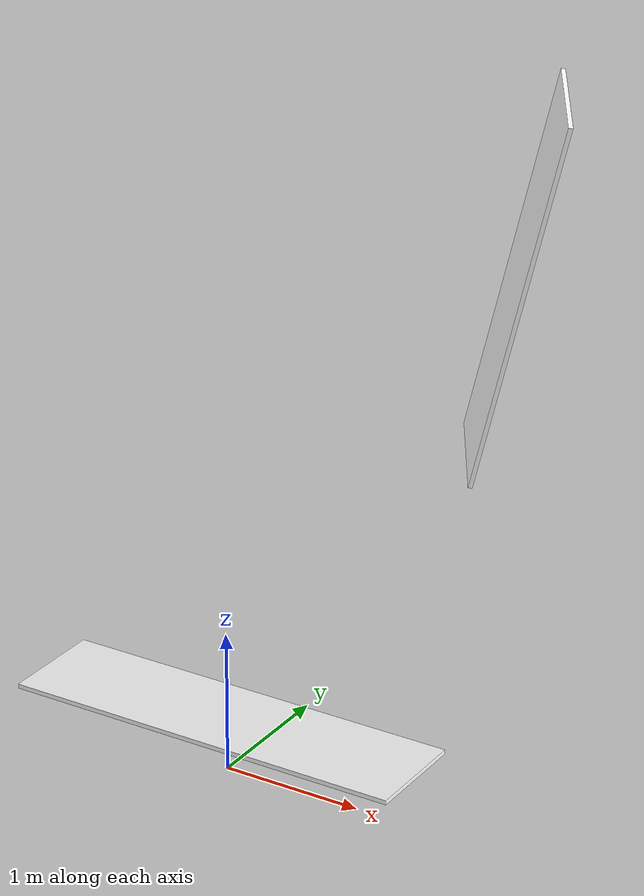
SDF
<?xml version='1.0' ?>

<!--
This is a test SDF specification of two models each containing three links,
two joints, and three sensors.
-->

<sdf version='1.6'>
  <model name='model_1'>
    <pose>0 0 0 0 0 0</pose>

    <link name='link_1'>
      <pose>0 0 0.378326 0 0 0</pose>
      <inertial>
       <pose>0 0 0 0 0 0</pose>
        <mass>57.833</mass>
        <inertia>
          <ixx>2.71553</ixx>
          <ixy>0</ixy>
          <ixz>0</ixz>
          <iyy>68.9</iyy>
          <iyz>0</iyz>
          <izz>71.6063</izz>
        </inertia>
      </inertial>
      <visual name='link_1_visualization'>
        <pose>0 0 0 0 0 0</pose>
        <geometry>
          <box>
            <size>2.8808 0.75 0.030921</size>
          </box>
        </geometry>
        <material>
          <diffuse>1 1 1 1</diffuse>
        </material>
      </visual>
      <sensor name="link_1_laser" type="ray">
        <always_on>1</always_on>
        <visualize>1</visualize>
        <update_rate>20.000000</update_rate>
        <pose>.055 0 0 0 0 0</pose>
        <ray>
          <scan>
            <horizontal>
              <samples>640</samples>
              <resolution>1.000000</resolution>
              <min_angle>-1.570796326794896557998982</min_angle>
              <max_angle>1.570796326794896557998982</max_angle>
            </horizontal>
          </scan>
          <range>
            <min>0.080000</min>
            <max>25.000000</max>
            <resolution>0.010000</resolution>
          </range>
        </ray>
      </sensor>
    </link>

    <joint name='joint_1' type='revolute'>
      <parent>link_1</parent>
      <child>link_2</child>
      <pose>0.17246968 0.08622747 0 0 0 0</pose>
      <axis>
        <xyz>0 0 1</xyz>
        <limit>
          <lower>-0.401426</lower>
          <upper>0.5</upper>
        </limit>
      </axis>
    </joint>

    <link name='link_2'>
      <pose>1 2 3 4 5 6</pose>
      <inertial>
       <pose>0 0 0 0 0 0</pose>
        <mass>105.8</mass>
        <inertia>
          <ixx>2.71553</ixx>
          <ixy>0</ixy>
          <ixz>0</ixz>
          <iyy>68.9</iyy>
          <iyz>0</iyz>
          <izz>71.6063</izz>
        </inertia>
      </inertial>
      <visual name='link_2_visualization'>
        <pose>0 0 0 0 0 0</pose>
        <geometry>
          <box>
            <size>2.8808 0.75 0.030921</size>
          </box>
        </geometry>
        <material>
          <diffuse>1 1 1 1</diffuse>
        </material>
      </visual>
      <sensor name="link_2_laser" type="ray">
        <always_on>1</always_on>
        <visualize>1</visualize>
        <update_rate>20.000000</update_rate>
        <pose>.055 0 0 0 0 0</pose>
        <ray>
          <scan>
            <horizontal>
              <samples>640</samples>
              <resolution>1.000000</resolution>
              <min_angle>-1.570796326794896557998982</min_angle>
              <max_angle>1.570796326794896557998982</max_angle>
            </horizontal>
          </scan>
          <range>
            <min>0.080000</min>
            <max>25.000000</max>
            <resolution>0.010000</resolution>
          </range>
        </ray>
      </sensor>
    </link>

    <joint name='joint_2' type='revolute'>
      <parent>link_2</parent>
      <child>link_3</child>
      <pose>0.17246968 0.08622747 0 0 0 0</pose>
      <axis>
        <xyz>0 0 1</xyz>
        <limit>
          <lower>-0.401426</lower>
          <upper>0.5</upper>
        </limit>
      </axis>
    </joint>

    <link name='link_3'>
      <pose>0 0 0.378326 0 0 0</pose>
      <inertial>
       <pose>0 0 0 0 0 0</pose>
        <mass>57.833</mass>
        <inertia>
          <ixx>2.71553</ixx>
          <ixy>0</ixy>
          <ixz>0</ixz>
          <iyy>68.9</iyy>
          <iyz>0</iyz>
          <izz>71.6063</izz>
        </inertia>
      </inertial>
      <visual name='link_1_visualization'>
        <pose>0 0 0 0 0 0</pose>
        <geometry>
          <box>
            <size>2.8808 0.75 0.030921</size>
          </box>
        </geometry>
        <material>
          <diffuse>1 1 1 1</diffuse>
        </material>
      </visual>
      <sensor name="link_3_laser" type="ray">
        <always_on>1</always_on>
        <visualize>1</visualize>
        <update_rate>20.000000</update_rate>
        <pose>.055 0 0 0 0 0</pose>
        <ray>
          <scan>
            <horizontal>
              <samples>640</samples>
              <resolution>1.000000</resolution>
              <min_angle>-1.570796326794896557998982</min_angle>
              <max_angle>1.570796326794896557998982</max_angle>
            </horizontal>
          </scan>
          <range>
            <min>0.080000</min>
            <max>25.000000</max>
            <resolution>0.010000</resolution>
          </range>
        </ray>
      </sensor>
    </link>
  </model>

  <model name='model_2'>
    <pose>0 0 0 0 0 0</pose>

    <link name='link_1'>
      <pose>0 0 0.378326 0 0 0</pose>
      <inertial>
       <pose>0 0 0 0 0 0</pose>
        <mass>57.833</mass>
        <inertia>
          <ixx>2.71553</ixx>
          <ixy>0</ixy>
          <ixz>0</ixz>
          <iyy>68.9</iyy>
          <iyz>0</iyz>
          <izz>71.6063</izz>
        </inertia>
      </inertial>
      <visual name='link_1_visualization'>
        <pose>0 0 0 0 0 0</pose>
        <geometry>
          <box>
            <size>2.8808 0.75 0.030921</size>
          </box>
        </geometry>
        <material>
          <diffuse>1 1 1 1</diffuse>
        </material>
      </visual>
      <sensor name="link_1_laser" type="ray">
        <always_on>1</always_on>
        <visualize>1</visualize>
        <update_rate>20.000000</update_rate>
        <pose>.055 0 0 0 0 0</pose>
        <ray>
          <scan>
            <horizontal>
              <samples>640</samples>
              <resolution>1.000000</resolution>
              <min_angle>-1.570796326794896557998982</min_angle>
              <max_angle>1.570796326794896557998982</max_angle>
            </horizontal>
          </scan>
          <range>
            <min>0.080000</min>
            <max>25.000000</max>
            <resolution>0.010000</resolution>
          </range>
        </ray>
      </sensor>
    </link>

    <joint name='joint_1' type='revolute'>
      <parent>link_1</parent>
      <child>link_2</child>
      <pose>0.17246968 0.08622747 0 0 0 0</pose>
      <axis>
        <xyz>0 0 1</xyz>
        <limit>
          <lower>-0.401426</lower>
          <upper>0.5</upper>
        </limit>
      </axis>
    </joint>

    <link name='link_2'>
      <pose>1 2 3 4 5 6</pose>
      <inertial>
       <pose>0 0 0 0 0 0</pose>
        <mass>105.8</mass>
        <inertia>
          <ixx>2.71553</ixx>
          <ixy>0</ixy>
          <ixz>0</ixz>
          <iyy>68.9</iyy>
          <iyz>0</iyz>
          <izz>71.6063</izz>
        </inertia>
      </inertial>
      <visual name='link_2_visualization'>
        <pose>0 0 0 0 0 0</pose>
        <geometry>
          <box>
            <size>2.8808 0.75 0.030921</size>
          </box>
        </geometry>
        <material>
          <diffuse>1 1 1 1</diffuse>
        </material>
      </visual>
      <sensor name="link_2_laser" type="ray">
        <always_on>1</always_on>
        <visualize>1</visualize>
        <update_rate>20.000000</update_rate>
        <pose>.055 0 0 0 0 0</pose>
        <ray>
          <scan>
            <horizontal>
              <samples>640</samples>
              <resolution>1.000000</resolution>
              <min_angle>-1.570796326794896557998982</min_angle>
              <max_angle>1.570796326794896557998982</max_angle>
            </horizontal>
          </scan>
          <range>
            <min>0.080000</min>
            <max>25.000000</max>
            <resolution>0.010000</resolution>
          </range>
        </ray>
      </sensor>
    </link>

    <joint name='joint_2' type='revolute'>
      <parent>link_2</parent>
      <child>link_3</child>
      <pose>0.17246968 0.08622747 0 0 0 0</pose>
      <axis>
        <xyz>0 0 1</xyz>
        <limit>
          <lower>-0.401426</lower>
          <upper>0.5</upper>
        </limit>
      </axis>
    </joint>

    <link name='link_3'>
      <pose>0 0 0.378326 0 0 0</pose>
      <inertial>
       <pose>0 0 0 0 0 0</pose>
        <mass>57.833</mass>
        <inertia>
          <ixx>2.71553</ixx>
          <ixy>0</ixy>
          <ixz>0</ixz>
          <iyy>68.9</iyy>
          <iyz>0</iyz>
          <izz>71.6063</izz>
        </inertia>
      </inertial>
      <visual name='link_1_visualization'>
        <pose>0 0 0 0 0 0</pose>
        <geometry>
          <box>
            <size>2.8808 0.75 0.030921</size>
          </box>
        </geometry>
        <material>
          <diffuse>1 1 1 1</diffuse>
        </material>
      </visual>
      <sensor name="link_3_laser" type="ray">
        <always_on>1</always_on>
        <visualize>1</visualize>
        <update_rate>20.000000</update_rate>
        <pose>.055 0 0 0 0 0</pose>
        <ray>
          <scan>
            <horizontal>
              <samples>640</samples>
              <resolution>1.000000</resolution>
              <min_angle>-1.570796326794896557998982</min_angle>
              <max_angle>1.570796326794896557998982</max_angle>
            </horizontal>
          </scan>
          <range>
            <min>0.080000</min>
            <max>25.000000</max>
            <resolution>0.010000</resolution>
          </range>
        </ray>
      </sensor>
    </link>
  </model>
</sdf>
